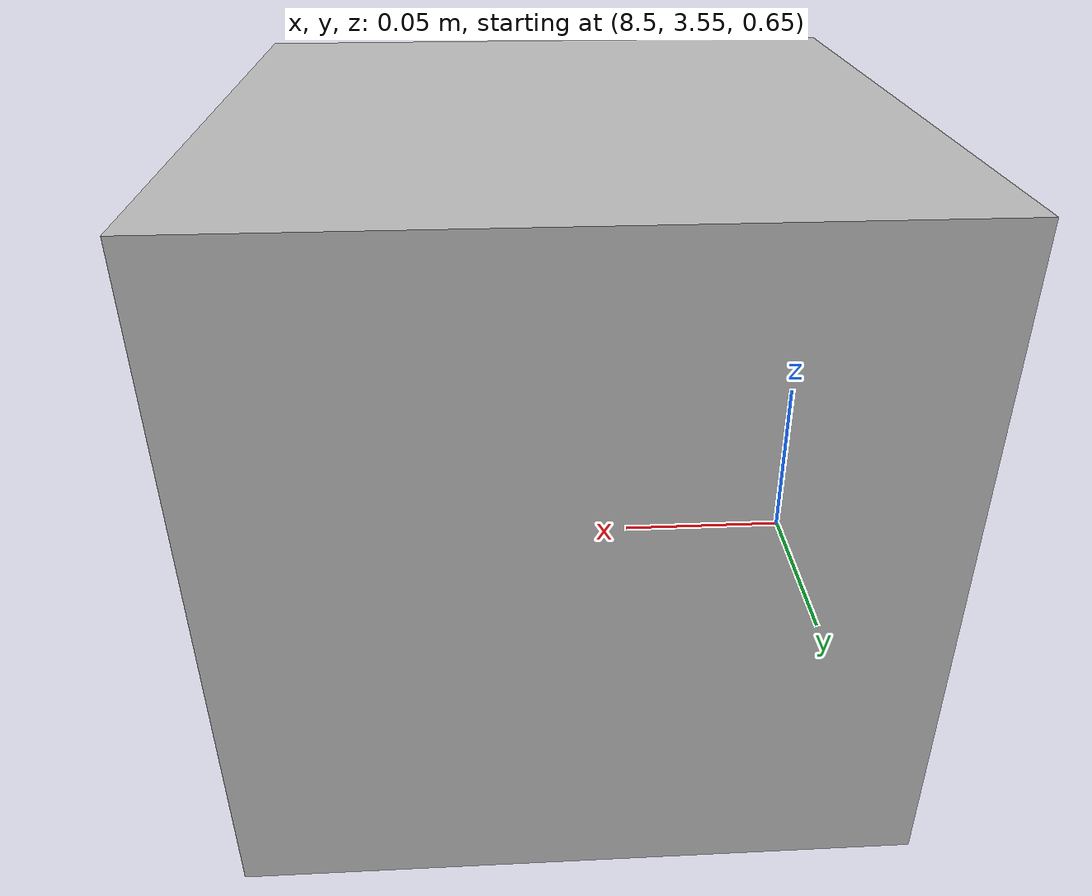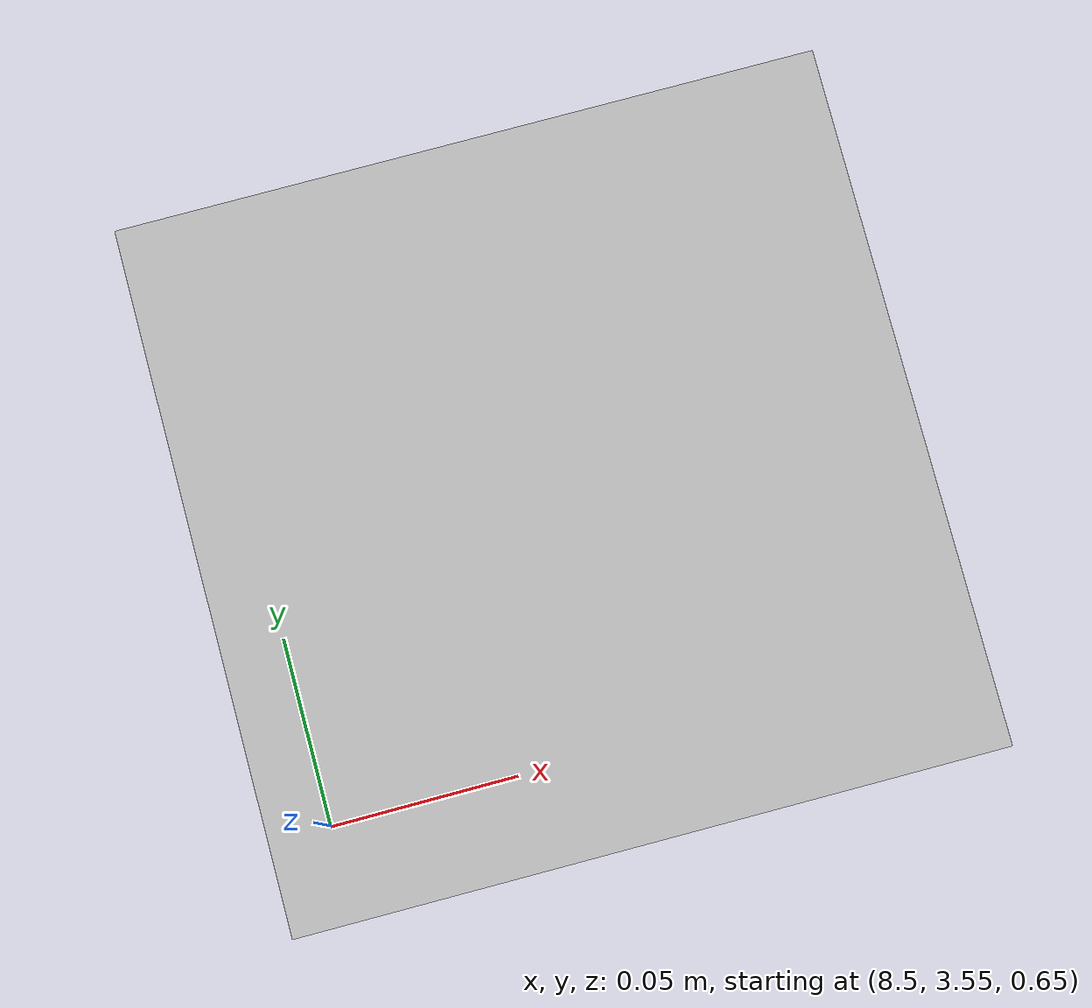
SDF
<sdf version="1.7">
 <world name="default">
  <model name="orthogonal_747_2.000.15_TS">
   <static>1</static>
   <link name="u_link_1_4_7">
    <inertial>
     <mass>1</mass>
     <inertia>
      <ixx>0.166667</ixx>
      <ixy>0</ixy>
      <ixz>0</ixz>
      <iyy>0.166667</iyy>
      <iyz>0</iyz>
      <izz>0.166667</izz>
     </inertia>
    </inertial>
    <pose>15.05 8.6 3.225 0 -0 0</pose>
    <visual name="visual_0">
     <laser_retro>1639</laser_retro>
     <geometry><box><size>0.15 1e-06 0.15</size></box></geometry>
     <material>
      <script><name>Gazebo/Grey</name><uri>file://media/materials/scripts/gazebo.material</uri></script>
      <shader type="pixel"><normal_map>__default__</normal_map></shader>
      <ambient>0.678 0.498 0.659 1</ambient>
      <diffuse>0.7 0.7 0.7 1</diffuse>
      <specular>0.01 0.01 0.01 1</specular>
      <emissive>0 0 0 1</emissive>
     </material>
     <pose>0 -0.075 0 0 -0 0</pose>
     <transparency>1</transparency>
    </visual>
    <visual name="visual_1">
     <laser_retro>1640</laser_retro>
     <geometry><box><size>0.15 1e-06 0.15</size></box></geometry>
     <material>
      <script><name>Gazebo/Grey</name><uri>file://media/materials/scripts/gazebo.material</uri></script>
      <shader type="pixel"><normal_map>__default__</normal_map></shader>
      <ambient>0.447 0.624 0.812 1</ambient>
      <diffuse>0.7 0.7 0.7 1</diffuse>
      <specular>0.01 0.01 0.01 1</specular>
      <emissive>0 0 0 1</emissive>
     </material>
     <pose>0 0.075 0 0 -0 0</pose>
     <transparency>1</transparency>
    </visual>
    <visual name="visual_2">
     <laser_retro>1641</laser_retro>
     <geometry><box><size>0.15 0.15 1e-06</size></box></geometry>
     <material>
      <script><name>Gazebo/Grey</name><uri>file://media/materials/scripts/gazebo.material</uri></script>
      <shader type="pixel"><normal_map>__default__</normal_map></shader>
      <ambient>0.988 0.686 0.243 1</ambient>
      <diffuse>0.7 0.7 0.7 1</diffuse>
      <specular>0.01 0.01 0.01 1</specular>
      <emissive>0 0 0 1</emissive>
     </material>
     <pose>0 0 -0.075 0 -0 0</pose>
     <transparency>1</transparency>
    </visual>
    <visual name="visual_3">
     <laser_retro>1642</laser_retro>
     <geometry><box><size>1e-06 0.15 0.15</size></box></geometry>
     <material>
      <script><name>Gazebo/Grey</name><uri>file://media/materials/scripts/gazebo.material</uri></script>
      <shader type="pixel"><normal_map>__default__</normal_map></shader>
      <ambient>0.988 0.914 0.31 1</ambient>
      <diffuse>0.7 0.7 0.7 1</diffuse>
      <specular>0.01 0.01 0.01 1</specular>
      <emissive>0 0 0 1</emissive>
     </material>
     <pose>0.075 0 0 0 -0 0</pose>
     <transparency>1</transparency>
    </visual>
    <visual name="visual_4">
     <laser_retro>1643</laser_retro>
     <geometry><box><size>0.15 0.15 1e-06</size></box></geometry>
     <material>
      <script><name>Gazebo/Grey</name><uri>file://media/materials/scripts/gazebo.material</uri></script>
      <shader type="pixel"><normal_map>__default__</normal_map></shader>
      <ambient>0.937 0.161 0.161 1</ambient>
      <diffuse>0.7 0.7 0.7 1</diffuse>
      <specular>0.01 0.01 0.01 1</specular>
      <emissive>0 0 0 1</emissive>
     </material>
     <pose>0 0 0.075 0 -0 0</pose>
     <transparency>1</transparency>
    </visual>
    <visual name="visual_5">
     <laser_retro>1644</laser_retro>
     <geometry><box><size>1e-06 0.15 0.15</size></box></geometry>
     <material>
      <script><name>Gazebo/Grey</name><uri>file://media/materials/scripts/gazebo.material</uri></script>
      <shader type="pixel"><normal_map>__default__</normal_map></shader>
      <ambient>0.541 0.886 0.204 1</ambient>
      <diffuse>0.7 0.7 0.7 1</diffuse>
      <specular>0.01 0.01 0.01 1</specular>
      <emissive>0 0 0 1</emissive>
     </material>
     <pose>-0.075 0 0 0 -0 0</pose>
     <transparency>1</transparency>
    </visual>
    <visual name="visual_texture">
     <geometry><box><size>0.149985 0.149985 0.149985</size></box></geometry>
     <material>
      <script>
       <uri>model://BASE_MODELS/simple_block_v2_textured/materials/scripts</uri>
       <uri>model://BASE_MODELS/simple_block_v2_textured/materials/textures</uri>
       <name>metal</name>
      </script>
     </material>
     <laser_retro>1645</laser_retro>
    </visual>
    <collision name="collision">
     <geometry><box><size>0.15 0.15 0.15</size></box></geometry>
     <surface>
      <friction>
       <ode><mu>1</mu><mu2>1</mu2><fdir1>0 0 0</fdir1><slip1>0</slip1><slip2>0</slip2></ode>
       <torsional>
        <coefficient>1</coefficient>
        <patch_radius>0</patch_radius>
        <surface_radius>0</surface_radius>
        <use_patch_radius>1</use_patch_radius>
        <ode><slip>0</slip></ode>
       </torsional>
      </friction>
      <bounce><restitution_coefficient>0</restitution_coefficient><threshold>1e+06</threshold></bounce>
      <contact>
       <collide_without_contact>0</collide_without_contact>
       <collide_without_contact_bitmask>1</collide_without_contact_bitmask>
       <collide_bitmask>1</collide_bitmask>
       <ode>
        <soft_cfm>0</soft_cfm>
        <soft_erp>0.2</soft_erp>
        <kp>1e+13</kp>
        <kd>1</kd>
        <max_vel>0.01</max_vel>
        <min_depth>0</min_depth>
       </ode>
       <bullet>
        <split_impulse>1</split_impulse>
        <split_impulse_penetration_threshold>-0.01</split_impulse_penetration_threshold>
        <soft_cfm>0</soft_cfm>
        <soft_erp>0.2</soft_erp>
        <kp>1e+13</kp>
        <kd>1</kd>
       </bullet>
      </contact>
     </surface>
    </collision>
   </link>
   <pose>-6.47624 -5 -2.5 0 -0 0</pose>
  </model>
 </world>
</sdf>
